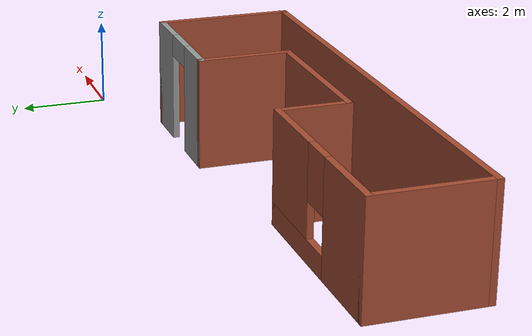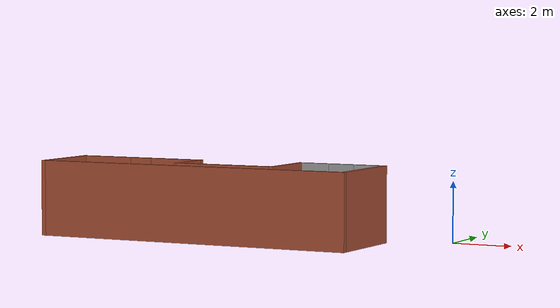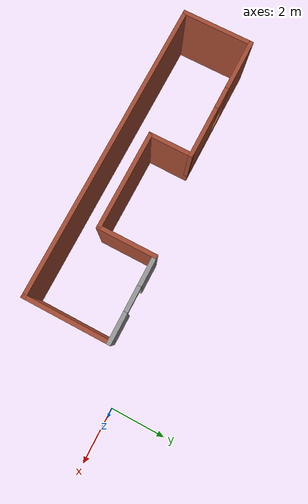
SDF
<?xml version='1.0'?>
<sdf version='1.6'>
  <model name='Building'>
    <pose frame=''>-7.5 -2.5 0 0 -0 0</pose>
    <link name='Wall_12'>
      <collision name='Wall_12_Collision'>
        <geometry>
          <box>
            <size>1.65 0.15 2.5</size>
          </box>
        </geometry>
        <pose frame=''>0 0 1.25 0 -0 0</pose>
      </collision>
      <visual name='Wall_12_Visual'>
        <pose frame=''>0 0 1.25 0 -0 0</pose>
        <geometry>
          <box>
            <size>1.65 0.15 2.5</size>
          </box>
        </geometry>
        <material>
          <script>
            <uri>file://media/materials/scripts/gazebo.material</uri>
            <name>Gazebo/Bricks</name>
          </script>
          <ambient>1 1 1 1</ambient>
        </material>
        <meta>
          <layer>0</layer>
        </meta>
      </visual>
      <pose frame=''>-1 0.25 0 0 0 -1.5708</pose>
    </link>
    <link name='Wall_13'>
      <collision name='Wall_13_Collision'>
        <geometry>
          <box>
            <size>3.65 0.15 2.5</size>
          </box>
        </geometry>
        <pose frame=''>0 0 1.25 0 -0 0</pose>
      </collision>
      <visual name='Wall_13_Visual'>
        <pose frame=''>0 0 1.25 0 -0 0</pose>
        <geometry>
          <box>
            <size>3.65 0.15 2.5</size>
          </box>
        </geometry>
        <material>
          <script>
            <uri>file://media/materials/scripts/gazebo.material</uri>
            <name>Gazebo/Bricks</name>
          </script>
          <ambient>1 1 1 1</ambient>
        </material>
        <meta>
          <layer>0</layer>
        </meta>
      </visual>
      <pose frame=''>0.75 -0.5 0 0 -0 0</pose>
    </link>
    <link name='Wall_14'>
      <collision name='Wall_14_Collision'>
        <geometry>
          <box>
            <size>2.15 0.15 2.5</size>
          </box>
        </geometry>
        <pose frame=''>0 0 1.25 0 -0 0</pose>
      </collision>
      <visual name='Wall_14_Visual'>
        <pose frame=''>0 0 1.25 0 -0 0</pose>
        <geometry>
          <box>
            <size>2.15 0.15 2.5</size>
          </box>
        </geometry>
        <material>
          <script>
            <uri>file://media/materials/scripts/gazebo.material</uri>
            <name>Gazebo/Bricks</name>
          </script>
          <ambient>1 1 1 1</ambient>
        </material>
        <meta>
          <layer>0</layer>
        </meta>
      </visual>
      <pose frame=''>2.5 0.5 0 0 -0 1.5708</pose>
    </link>
    <link name='Wall_15'>
      <pose frame=''>4 1.5 0 0 -0 0</pose>
      <visual name='Wall_15_Visual_0'>
        <pose frame=''>-1.00931 0 1.25 0 -0 0</pose>
        <geometry>
          <box>
            <size>1.13137 0.15 2.5</size>
          </box>
        </geometry>
        <material>
          <script>
            <uri>file://media/materials/scripts/gazebo.material</uri>
            <name>Gazebo/Grey</name>
          </script>
          <ambient>1 1 1 1</ambient>
        </material>
        <meta>
          <layer>0</layer>
        </meta>
      </visual>
      <collision name='Wall_15_Collision_0'>
        <geometry>
          <box>
            <size>1.13137 0.15 2.5</size>
          </box>
        </geometry>
        <pose frame=''>-1.00931 0 1.25 0 -0 0</pose>
      </collision>
      <visual name='Wall_15_Visual_1'>
        <pose frame=''>1.01569 0 1.25 0 -0 0</pose>
        <geometry>
          <box>
            <size>1.11863 0.15 2.5</size>
          </box>
        </geometry>
        <material>
          <script>
            <uri>file://media/materials/scripts/gazebo.material</uri>
            <name>Gazebo/Grey</name>
          </script>
          <ambient>1 1 1 1</ambient>
        </material>
        <meta>
          <layer>0</layer>
        </meta>
      </visual>
      <collision name='Wall_15_Collision_1'>
        <geometry>
          <box>
            <size>1.11863 0.15 2.5</size>
          </box>
        </geometry>
        <pose frame=''>1.01569 0 1.25 0 -0 0</pose>
      </collision>
      <visual name='Wall_15_Visual_2'>
        <pose frame=''>0.006373 0 2.25 0 -0 0</pose>
        <geometry>
          <box>
            <size>0.9 0.15 0.5</size>
          </box>
        </geometry>
        <material>
          <script>
            <uri>file://media/materials/scripts/gazebo.material</uri>
            <name>Gazebo/Grey</name>
          </script>
          <ambient>1 1 1 1</ambient>
        </material>
        <meta>
          <layer>0</layer>
        </meta>
      </visual>
      <collision name='Wall_15_Collision_2'>
        <geometry>
          <box>
            <size>0.9 0.15 0.5</size>
          </box>
        </geometry>
        <pose frame=''>0.006373 0 2.25 0 -0 0</pose>
      </collision>
    </link>
    <link name='Wall_16'>
      <collision name='Wall_16_Collision'>
        <geometry>
          <box>
            <size>3.15 0.15 2.5</size>
          </box>
        </geometry>
        <pose frame=''>0 0 1.25 0 -0 0</pose>
      </collision>
      <visual name='Wall_16_Visual'>
        <pose frame=''>0 0 1.25 0 -0 0</pose>
        <geometry>
          <box>
            <size>3.15 0.15 2.5</size>
          </box>
        </geometry>
        <material>
          <script>
            <uri>file://media/materials/scripts/gazebo.material</uri>
            <name>Gazebo/Bricks</name>
          </script>
          <ambient>1 1 1 1</ambient>
        </material>
        <meta>
          <layer>0</layer>
        </meta>
      </visual>
      <pose frame=''>5.5 0 0 0 0 -1.5708</pose>
    </link>
    <link name='Wall_17'>
      <collision name='Wall_17_Collision'>
        <geometry>
          <box>
            <size>11.15 0.15 2.5</size>
          </box>
        </geometry>
        <pose frame=''>0 0 1.25 0 -0 0</pose>
      </collision>
      <visual name='Wall_17_Visual'>
        <pose frame=''>0 0 1.25 0 -0 0</pose>
        <geometry>
          <box>
            <size>11.15 0.15 2.5</size>
          </box>
        </geometry>
        <material>
          <script>
            <uri>file://media/materials/scripts/gazebo.material</uri>
            <name>Gazebo/Bricks</name>
          </script>
          <ambient>1 1 1 1</ambient>
        </material>
        <meta>
          <layer>0</layer>
        </meta>
      </visual>
      <pose frame=''>0 -1.5 0 0 -0 3.14159</pose>
    </link>
    <link name='Wall_18'>
      <collision name='Wall_18_Collision'>
        <geometry>
          <box>
            <size>2.65 0.15 2.5</size>
          </box>
        </geometry>
        <pose frame=''>0 0 1.25 0 -0 0</pose>
      </collision>
      <visual name='Wall_18_Visual'>
        <pose frame=''>0 0 1.25 0 -0 0</pose>
        <geometry>
          <box>
            <size>2.65 0.15 2.5</size>
          </box>
        </geometry>
        <material>
          <script>
            <uri>file://media/materials/scripts/gazebo.material</uri>
            <name>Gazebo/Bricks</name>
          </script>
          <ambient>1 1 1 1</ambient>
        </material>
        <meta>
          <layer>0</layer>
        </meta>
      </visual>
      <pose frame=''>-5.5 -0.25 0 0 -0 1.5708</pose>
    </link>
    <link name='Wall_25'>
      <pose frame=''>-3.25 1 0 0 -0 0</pose>
      <visual name='Wall_25_Visual_0'>
        <pose frame=''>-1.3608 0 1.25 0 -0 0</pose>
        <geometry>
          <box>
            <size>1.92839 0.15 2.5</size>
          </box>
        </geometry>
        <material>
          <script>
            <uri>file://media/materials/scripts/gazebo.material</uri>
            <name>Gazebo/Bricks</name>
          </script>
          <ambient>1 1 1 1</ambient>
        </material>
        <meta>
          <layer>0</layer>
        </meta>
      </visual>
      <collision name='Wall_25_Collision_0'>
        <geometry>
          <box>
            <size>1.92839 0.15 2.5</size>
          </box>
        </geometry>
        <pose frame=''>-1.3608 0 1.25 0 -0 0</pose>
      </collision>
      <visual name='Wall_25_Visual_1'>
        <pose frame=''>0.964196 0 0.25 0 -0 0</pose>
        <geometry>
          <box>
            <size>2.72161 0.15 0.5</size>
          </box>
        </geometry>
        <material>
          <script>
            <uri>file://media/materials/scripts/gazebo.material</uri>
            <name>Gazebo/Bricks</name>
          </script>
          <ambient>1 1 1 1</ambient>
        </material>
        <meta>
          <layer>0</layer>
        </meta>
      </visual>
      <collision name='Wall_25_Collision_1'>
        <geometry>
          <box>
            <size>2.72161 0.15 0.5</size>
          </box>
        </geometry>
        <pose frame=''>0.964196 0 0.25 0 -0 0</pose>
      </collision>
      <visual name='Wall_25_Visual_2'>
        <pose frame=''>1.3642 0 1.5 0 -0 0</pose>
        <geometry>
          <box>
            <size>1.92161 0.15 2</size>
          </box>
        </geometry>
        <material>
          <script>
            <uri>file://media/materials/scripts/gazebo.material</uri>
            <name>Gazebo/Bricks</name>
          </script>
          <ambient>1 1 1 1</ambient>
        </material>
        <meta>
          <layer>0</layer>
        </meta>
      </visual>
      <collision name='Wall_25_Collision_2'>
        <geometry>
          <box>
            <size>1.92161 0.15 2</size>
          </box>
        </geometry>
        <pose frame=''>1.3642 0 1.5 0 -0 0</pose>
      </collision>
      <visual name='Wall_25_Visual_3'>
        <pose frame=''>0.003391 0 1.9 0 -0 0</pose>
        <geometry>
          <box>
            <size>0.8 0.15 1.2</size>
          </box>
        </geometry>
        <material>
          <script>
            <uri>file://media/materials/scripts/gazebo.material</uri>
            <name>Gazebo/Bricks</name>
          </script>
          <ambient>1 1 1 1</ambient>
        </material>
        <meta>
          <layer>0</layer>
        </meta>
      </visual>
      <collision name='Wall_25_Collision_3'>
        <geometry>
          <box>
            <size>0.8 0.15 1.2</size>
          </box>
        </geometry>
        <pose frame=''>0.003391 0 1.9 0 -0 0</pose>
      </collision>
    </link>
    <static>1</static>
  </model>
</sdf>
